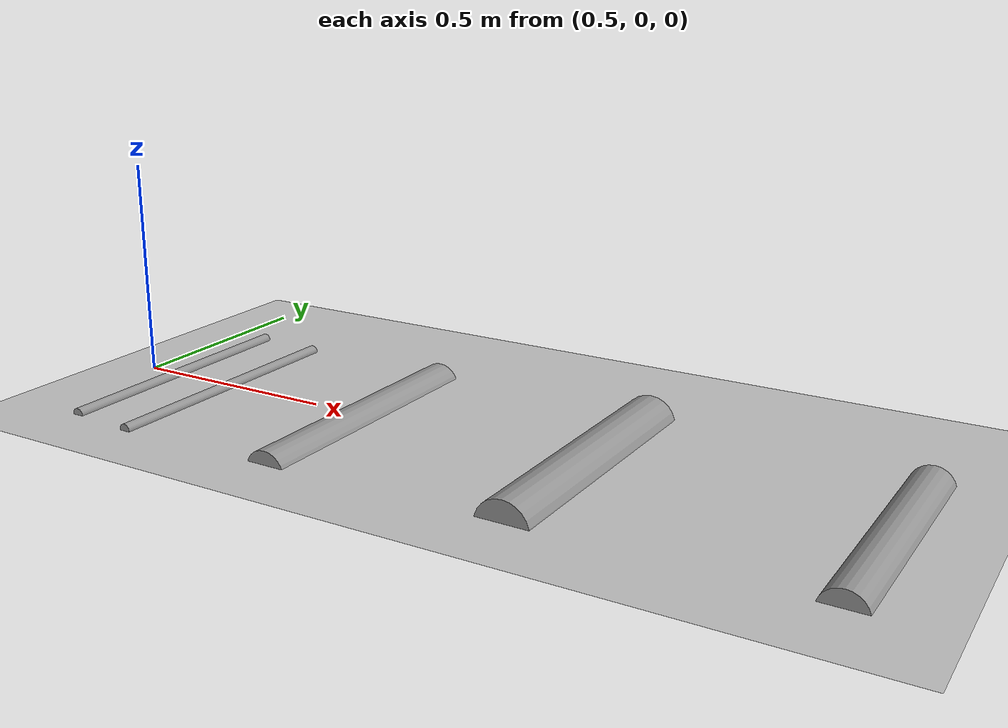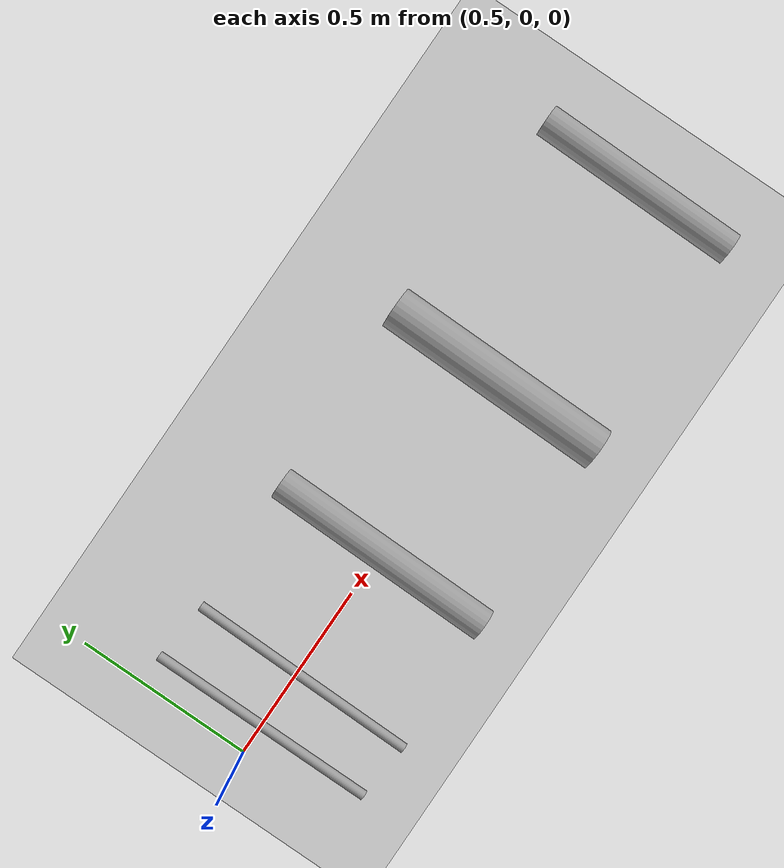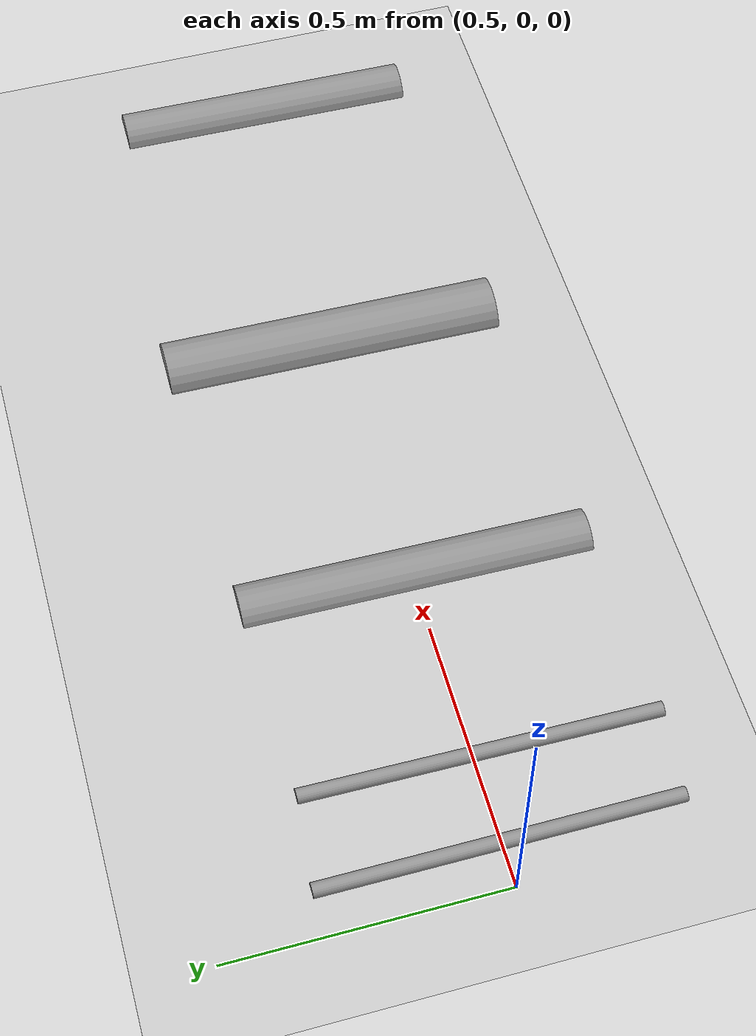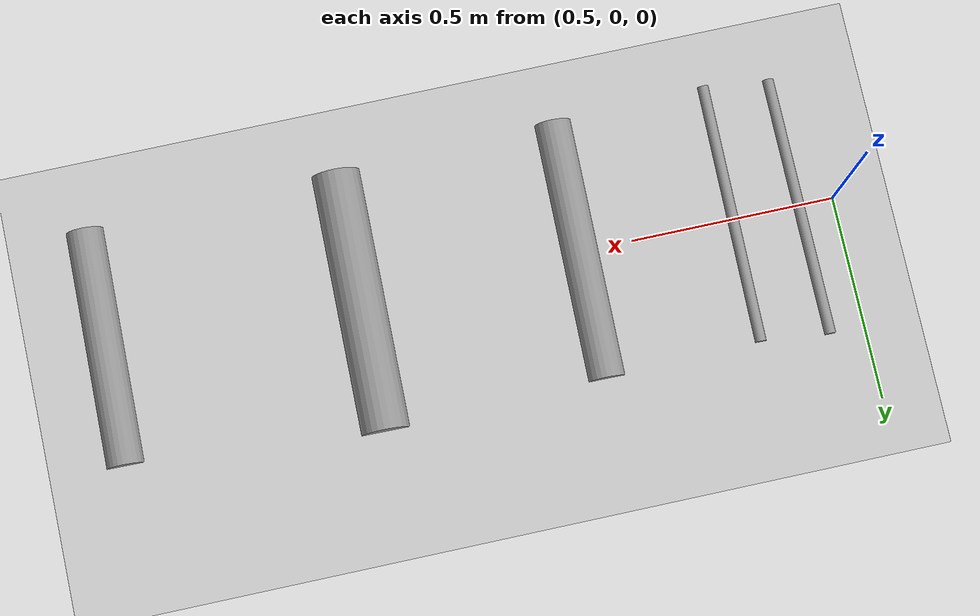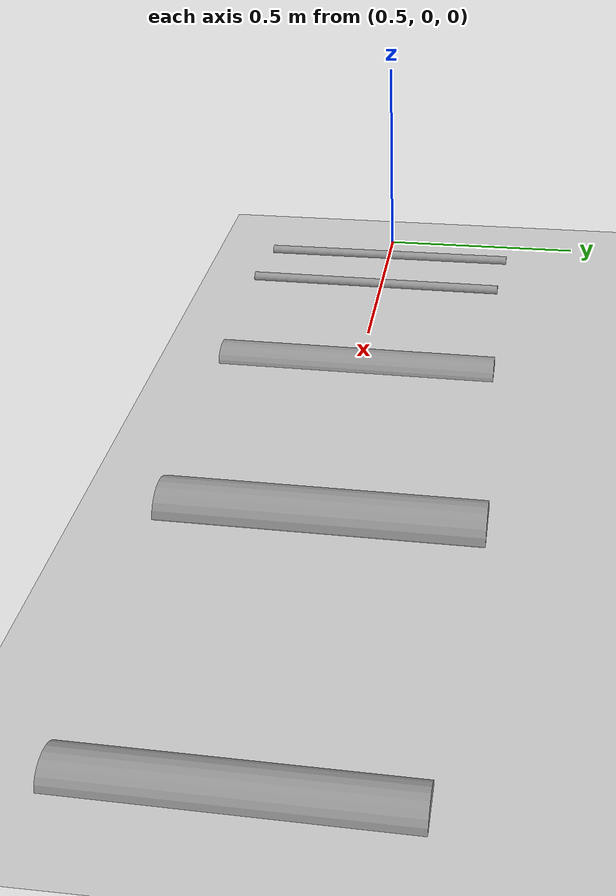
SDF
<?xml version="1.0" ?>
<sdf version="1.6">
  <world name="mars_terrain">
	<!-- Setting the physics and scene -->
    <physics name="default_physics" default="true" type="ode">
      <max_step_size>0.002</max_step_size>
      <real_time_factor>1</real_time_factor>
      <real_time_update_rate>500</real_time_update_rate>
    </physics>
    <scene>
      <ambient>0.5 0.5 0.5 1.0</ambient>
      <shadows>0</shadows>
    </scene>

	<gravity>0 0 -3.711</gravity>

	<!-- Importing mars terrain -->
	<include>
		<uri>model://terrain</uri>
	</include>

	<!-- Comment to remove the bumpers -->
	<include>
		<uri>model://bumpers</uri>
	</include>

	<include>
      <uri>model://sun</uri>
    </include>

	<!-- Default camera view setting -->
	<gui fullscreen='0'>
      <camera name='user_camera'>
        <pose frame=''>2.02272 -1.07327 0.474092 0 0.183643 2.8202</pose>
        <view_controller>orbit</view_controller>
        <projection_type>perspective</projection_type>
      </camera>
    </gui>

  </world>
</sdf>

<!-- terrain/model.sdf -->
<sdf version="1.6">

	<model name='terrain'>
      <static>1</static>
      <link name='link'>
        <collision name='collision'>
          <geometry>
            <plane>
              <normal>0 0 1</normal>
              <size>100 100</size>
            </plane>
          </geometry>
          <surface>
            <contact>
              <collide_bitmask>65535</collide_bitmask>
              <ode/>
            </contact>
            <friction>
              <ode>
                <mu>100</mu>
                <mu2>50</mu2>
              </ode>
              <torsional>
                <ode/>
              </torsional>
            </friction>
            <bounce/>
          </surface>
          <max_contacts>10</max_contacts>
        </collision>
        <visual name='visual'>
          <cast_shadows>0</cast_shadows>
          <geometry>
            <plane>
              <normal>0 0 1</normal>
              <size>100 100</size>
            </plane>
          </geometry>
          <material>
			  <script>
            <uri>file://models/terrain/materials/scripts/terrain.material</uri>
              <name>terrain/mars</name>
              </script>
          </material>
        </visual>
        <self_collide>0</self_collide>
        <enable_wind>0</enable_wind>
        <kinematic>0</kinematic>
      </link>
    </model>

</sdf>

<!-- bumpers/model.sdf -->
<sdf version='1.6'>
  <model name='bumpers'>

	<pose frame=''>0.58361 0 0 1.5708 0 0</pose>

    <link name='link'>
      <inertial>
        <mass>1</mass>
        <inertia>
          <ixx>0.145833</ixx>
          <ixy>0</ixy>
          <ixz>0</ixz>
          <iyy>0.145833</iyy>
          <iyz>0</iyz>
          <izz>0.125</izz>
        </inertia>
      </inertial>
      <self_collide>0</self_collide>
      <enable_wind>0</enable_wind>
      <kinematic>0</kinematic>
      <pose frame=''>0 0 0 0 -0 0</pose>
      <visual name='visual'>
        <geometry>
          <cylinder>
            <radius>0.013658</radius>
            <length>0.645359</length>
          </cylinder>
        </geometry>
        <material>
          <script>
            <name>Gazebo/Grey</name>
            <uri>file://media/materials/scripts/gazebo.material</uri>
          </script>
        </material>
        <pose frame=''>0 0 0 0 -0 0</pose>
        <transparency>0</transparency>
        <cast_shadows>1</cast_shadows>
      </visual>
      <collision name='collision'>
        <laser_retro>0</laser_retro>
        <max_contacts>10</max_contacts>
        <pose frame=''>0 0 0 0 -0 0</pose>
        <geometry>
          <cylinder>
            <radius>0.013658</radius>
            <length>0.645359</length>
          </cylinder>
        </geometry>
        <surface>
          <friction>
            <ode>
              <mu>1</mu>
              <mu2>1</mu2>
              <fdir1>0 0 0</fdir1>
              <slip1>0</slip1>
              <slip2>0</slip2>
            </ode>
            <torsional>
              <coefficient>1</coefficient>
              <patch_radius>0</patch_radius>
              <surface_radius>0</surface_radius>
              <use_patch_radius>1</use_patch_radius>
              <ode>
                <slip>0</slip>
              </ode>
            </torsional>
          </friction>
          <bounce>
            <restitution_coefficient>0</restitution_coefficient>
            <threshold>1e+06</threshold>
          </bounce>
          <contact>
            <collide_without_contact>0</collide_without_contact>
            <collide_without_contact_bitmask>1</collide_without_contact_bitmask>
            <collide_bitmask>1</collide_bitmask>
            <ode>
              <soft_cfm>0</soft_cfm>
              <soft_erp>0.2</soft_erp>
              <kp>1e+13</kp>
              <kd>1</kd>
              <max_vel>0.01</max_vel>
              <min_depth>0</min_depth>
            </ode>
            <bullet>
              <split_impulse>1</split_impulse>
              <split_impulse_penetration_threshold>-0.01</split_impulse_penetration_threshold>
              <soft_cfm>0</soft_cfm>
              <soft_erp>0.2</soft_erp>
              <kp>1e+13</kp>
              <kd>1</kd>
            </bullet>
          </contact>
        </surface>
      </collision>
    </link>
    <link name='link_clone'>
      <inertial>
        <mass>1</mass>
        <inertia>
          <ixx>0.145833</ixx>
          <ixy>0</ixy>
          <ixz>0</ixz>
          <iyy>0.145833</iyy>
          <iyz>0</iyz>
          <izz>0.125</izz>
        </inertia>
        <pose frame=''>0 0 0 0 -0 0</pose>
      </inertial>
      <self_collide>0</self_collide>
      <enable_wind>0</enable_wind>
      <kinematic>0</kinematic>
      <pose frame=''>0.164302 0.000296 0.016876 0 -0.012332 0.001812</pose>
      <gravity>1</gravity>
      <visual name='visual'>
        <geometry>
          <cylinder>
            <radius>0.013658</radius>
            <length>0.645359</length>
          </cylinder>
        </geometry>
        <material>
          <script>
            <name>Gazebo/Grey</name>
            <uri>file://media/materials/scripts/gazebo.material</uri>
          </script>
          <shader type='vertex'>
            <normal_map>__default__</normal_map>
          </shader>
          <ambient>0.3 0.3 0.3 1</ambient>
          <diffuse>0.7 0.7 0.7 1</diffuse>
          <specular>0.01 0.01 0.01 1</specular>
          <emissive>0 0 0 1</emissive>
        </material>
        <pose frame=''>0 0 0 0 -0 0</pose>
        <transparency>0</transparency>
        <cast_shadows>1</cast_shadows>
      </visual>
      <collision name='collision'>
        <laser_retro>0</laser_retro>
        <max_contacts>10</max_contacts>
        <pose frame=''>0 0 0 0 -0 0</pose>
        <geometry>
          <cylinder>
            <radius>0.013658</radius>
            <length>0.645359</length>
          </cylinder>
        </geometry>
        <surface>
          <friction>
            <ode>
              <mu>1</mu>
              <mu2>1</mu2>
              <fdir1>0 0 0</fdir1>
              <slip1>0</slip1>
              <slip2>0</slip2>
            </ode>
            <torsional>
              <coefficient>1</coefficient>
              <patch_radius>0</patch_radius>
              <surface_radius>0</surface_radius>
              <use_patch_radius>1</use_patch_radius>
              <ode>
                <slip>0</slip>
              </ode>
            </torsional>
          </friction>
          <bounce>
            <restitution_coefficient>0</restitution_coefficient>
            <threshold>1e+06</threshold>
          </bounce>
          <contact>
            <collide_without_contact>0</collide_without_contact>
            <collide_without_contact_bitmask>1</collide_without_contact_bitmask>
            <collide_bitmask>1</collide_bitmask>
            <ode>
              <soft_cfm>0</soft_cfm>
              <soft_erp>0.2</soft_erp>
              <kp>1e+13</kp>
              <kd>1</kd>
              <max_vel>0.01</max_vel>
              <min_depth>0</min_depth>
            </ode>
            <bullet>
              <split_impulse>1</split_impulse>
              <split_impulse_penetration_threshold>-0.01</split_impulse_penetration_threshold>
              <soft_cfm>0</soft_cfm>
              <soft_erp>0.2</soft_erp>
              <kp>1e+13</kp>
              <kd>1</kd>
            </bullet>
          </contact>
        </surface>
      </collision>
    </link>
    <link name='link_clone_clone'>
      <inertial>
        <mass>12.2286</mass>
        <inertia>
          <ixx>0.431397</ixx>
          <ixy>0</ixy>
          <ixz>0</ixz>
          <iyy>0.431397</iyy>
          <iyz>0</iyz>
          <izz>0.0139485</izz>
        </inertia>
        <pose frame=''>0 0 0 0 -0 0</pose>
      </inertial>
      <self_collide>0</self_collide>
      <enable_wind>0</enable_wind>
      <kinematic>0</kinematic>
      <pose frame=''>0.54597 -0.018391 0.008595 0 -0.014142 -0.010521</pose>
      <gravity>1</gravity>
      <visual name='visual'>
        <geometry>
          <cylinder>
            <radius>0.0477628</radius>
            <length>0.645359</length>
          </cylinder>
        </geometry>
        <material>
          <script>
            <name>Gazebo/Grey</name>
            <uri>file://media/materials/scripts/gazebo.material</uri>
          </script>
          <shader type='vertex'>
            <normal_map>__default__</normal_map>
          </shader>
          <ambient>0.3 0.3 0.3 1</ambient>
          <diffuse>0.7 0.7 0.7 1</diffuse>
          <specular>0.01 0.01 0.01 1</specular>
          <emissive>0 0 0 1</emissive>
        </material>
        <pose frame=''>0 0 0 0 -0 0</pose>
        <transparency>0</transparency>
        <cast_shadows>1</cast_shadows>
      </visual>
      <collision name='collision'>
        <laser_retro>0</laser_retro>
        <max_contacts>10</max_contacts>
        <pose frame=''>0 0 0 0 -0 0</pose>
        <geometry>
          <cylinder>
            <radius>0.047763</radius>
            <length>0.645359</length>
          </cylinder>
        </geometry>
        <surface>
          <friction>
            <ode>
              <mu>1</mu>
              <mu2>1</mu2>
              <fdir1>0 0 0</fdir1>
              <slip1>0</slip1>
              <slip2>0</slip2>
            </ode>
            <torsional>
              <coefficient>1</coefficient>
              <patch_radius>0</patch_radius>
              <surface_radius>0</surface_radius>
              <use_patch_radius>1</use_patch_radius>
              <ode>
                <slip>0</slip>
              </ode>
            </torsional>
          </friction>
          <bounce>
            <restitution_coefficient>0</restitution_coefficient>
            <threshold>1e+06</threshold>
          </bounce>
          <contact>
            <collide_without_contact>0</collide_without_contact>
            <collide_without_contact_bitmask>1</collide_without_contact_bitmask>
            <collide_bitmask>1</collide_bitmask>
            <ode>
              <soft_cfm>0</soft_cfm>
              <soft_erp>0.2</soft_erp>
              <kp>1e+13</kp>
              <kd>1</kd>
              <max_vel>0.01</max_vel>
              <min_depth>0</min_depth>
            </ode>
            <bullet>
              <split_impulse>1</split_impulse>
              <split_impulse_penetration_threshold>-0.01</split_impulse_penetration_threshold>
              <soft_cfm>0</soft_cfm>
              <soft_erp>0.2</soft_erp>
              <kp>1e+13</kp>
              <kd>1</kd>
            </bullet>
          </contact>
        </surface>
      </collision>
    </link>
    <link name='link_clone_clone_0'>
      <inertial>
        <mass>19.667</mass>
        <inertia>
          <ixx>0.700632</ixx>
          <ixy>0</ixy>
          <ixz>0</ixz>
          <iyy>0.700632</iyy>
          <iyz>0</iyz>
          <izz>0.0360843</izz>
        </inertia>
        <pose frame=''>0 0 0 0 -0 0</pose>
      </inertial>
      <self_collide>0</self_collide>
      <enable_wind>0</enable_wind>
      <kinematic>0</kinematic>
      <pose frame=''>1.09165 -0.014898 -0.003283 0 -0.014142 -0.010521</pose>
      <gravity>1</gravity>
      <visual name='visual'>
        <geometry>
          <cylinder>
            <radius>0.0605766</radius>
            <length>0.645359</length>
          </cylinder>
        </geometry>
        <material>
          <script>
            <name>Gazebo/Grey</name>
            <uri>file://media/materials/scripts/gazebo.material</uri>
          </script>
          <shader type='vertex'>
            <normal_map>__default__</normal_map>
          </shader>
          <ambient>0.3 0.3 0.3 1</ambient>
          <diffuse>0.7 0.7 0.7 1</diffuse>
          <specular>0.01 0.01 0.01 1</specular>
          <emissive>0 0 0 1</emissive>
        </material>
        <pose frame=''>0 0 0 0 -0 0</pose>
        <transparency>0</transparency>
        <cast_shadows>1</cast_shadows>
      </visual>
      <collision name='collision'>
        <laser_retro>0</laser_retro>
        <max_contacts>10</max_contacts>
        <pose frame=''>0 0 0 0 -0 0</pose>
        <geometry>
          <cylinder>
            <radius>0.060577</radius>
            <length>0.645359</length>
          </cylinder>
        </geometry>
        <surface>
          <friction>
            <ode>
              <mu>1</mu>
              <mu2>1</mu2>
              <fdir1>0 0 0</fdir1>
              <slip1>0</slip1>
              <slip2>0</slip2>
            </ode>
            <torsional>
              <coefficient>1</coefficient>
              <patch_radius>0</patch_radius>
              <surface_radius>0</surface_radius>
              <use_patch_radius>1</use_patch_radius>
              <ode>
                <slip>0</slip>
              </ode>
            </torsional>
          </friction>
          <bounce>
            <restitution_coefficient>0</restitution_coefficient>
            <threshold>1e+06</threshold>
          </bounce>
          <contact>
            <collide_without_contact>0</collide_without_contact>
            <collide_without_contact_bitmask>1</collide_without_contact_bitmask>
            <collide_bitmask>1</collide_bitmask>
            <ode>
              <soft_cfm>0</soft_cfm>
              <soft_erp>0.2</soft_erp>
              <kp>1e+13</kp>
              <kd>1</kd>
              <max_vel>0.01</max_vel>
              <min_depth>0</min_depth>
            </ode>
            <bullet>
              <split_impulse>1</split_impulse>
              <split_impulse_penetration_threshold>-0.01</split_impulse_penetration_threshold>
              <soft_cfm>0</soft_cfm>
              <soft_erp>0.2</soft_erp>
              <kp>1e+13</kp>
              <kd>1</kd>
            </bullet>
          </contact>
        </surface>
      </collision>
    </link>
    <link name='link_clone_clone_1'>
      <inertial>
        <mass>10.7087</mass>
        <inertia>
          <ixx>0.310218</ixx>
          <ixy>0</ixy>
          <ixz>0</ixz>
          <iyy>0.310218</iyy>
          <iyz>0</iyz>
          <izz>0.0118194</izz>
        </inertia>
        <pose frame=''>0 0 0 0 -0 0</pose>
      </inertial>
      <self_collide>0</self_collide>
      <enable_wind>0</enable_wind>
      <kinematic>0</kinematic>
      <pose frame=''>1.71642 -0.013766 0.016709 0 -0.014142 -0.010521</pose>
      <gravity>1</gravity>
      <visual name='visual'>
        <geometry>
          <cylinder>
            <radius>0.0469834</radius>
            <length>0.583955</length>
          </cylinder>
        </geometry>
        <material>
          <script>
            <name>Gazebo/Grey</name>
            <uri>file://media/materials/scripts/gazebo.material</uri>
          </script>
          <shader type='vertex'>
            <normal_map>__default__</normal_map>
          </shader>
          <ambient>0.3 0.3 0.3 1</ambient>
          <diffuse>0.7 0.7 0.7 1</diffuse>
          <specular>0.01 0.01 0.01 1</specular>
          <emissive>0 0 0 1</emissive>
        </material>
        <pose frame=''>0 0 0 0 -0 0</pose>
        <transparency>0</transparency>
        <cast_shadows>1</cast_shadows>
      </visual>
      <collision name='collision'>
        <laser_retro>0</laser_retro>
        <max_contacts>10</max_contacts>
        <pose frame=''>0 0 0 0 -0 0</pose>
        <geometry>
          <cylinder>
            <radius>0.046983</radius>
            <length>0.583955</length>
          </cylinder>
        </geometry>
        <surface>
          <friction>
            <ode>
              <mu>1</mu>
              <mu2>1</mu2>
              <fdir1>0 0 0</fdir1>
              <slip1>0</slip1>
              <slip2>0</slip2>
            </ode>
            <torsional>
              <coefficient>1</coefficient>
              <patch_radius>0</patch_radius>
              <surface_radius>0</surface_radius>
              <use_patch_radius>1</use_patch_radius>
              <ode>
                <slip>0</slip>
              </ode>
            </torsional>
          </friction>
          <bounce>
            <restitution_coefficient>0</restitution_coefficient>
            <threshold>1e+06</threshold>
          </bounce>
          <contact>
            <collide_without_contact>0</collide_without_contact>
            <collide_without_contact_bitmask>1</collide_without_contact_bitmask>
            <collide_bitmask>1</collide_bitmask>
            <ode>
              <soft_cfm>0</soft_cfm>
              <soft_erp>0.2</soft_erp>
              <kp>1e+13</kp>
              <kd>1</kd>
              <max_vel>0.01</max_vel>
              <min_depth>0</min_depth>
            </ode>
            <bullet>
              <split_impulse>1</split_impulse>
              <split_impulse_penetration_threshold>-0.01</split_impulse_penetration_threshold>
              <soft_cfm>0</soft_cfm>
              <soft_erp>0.2</soft_erp>
              <kp>1e+13</kp>
              <kd>1</kd>
            </bullet>
          </contact>
        </surface>
      </collision>
    </link>
    <static>1</static>
    <allow_auto_disable>1</allow_auto_disable>
  </model>
</sdf>
